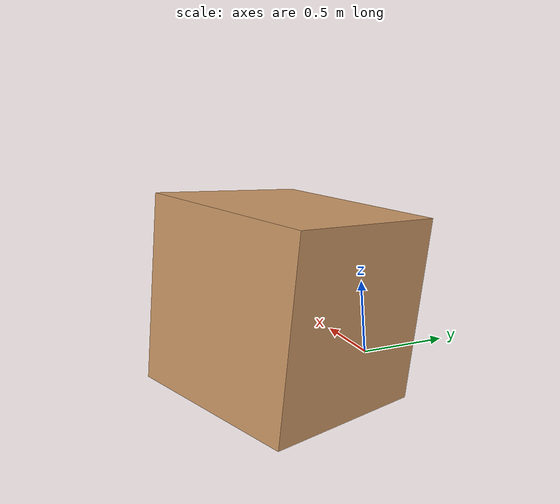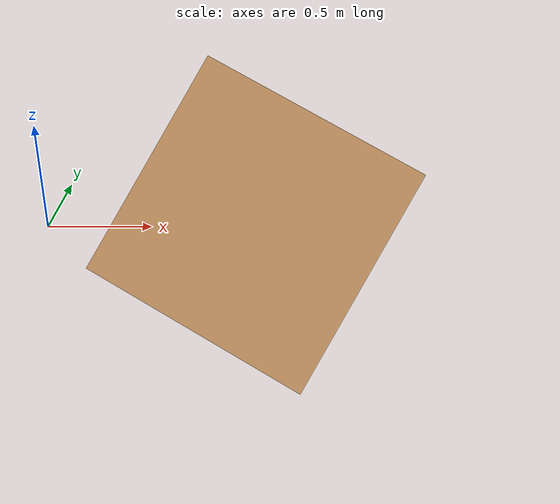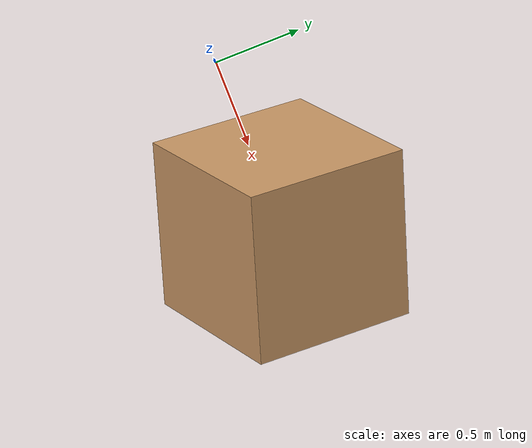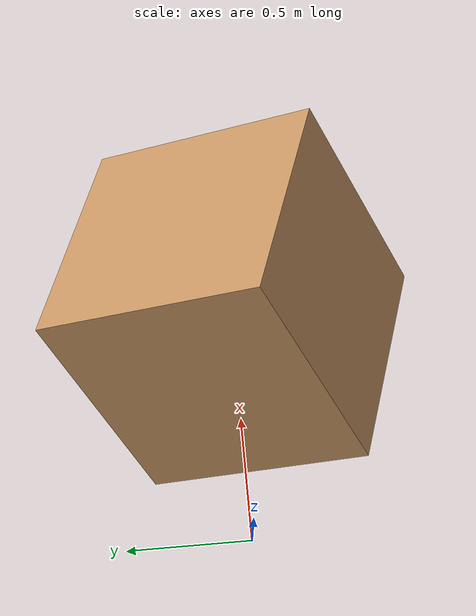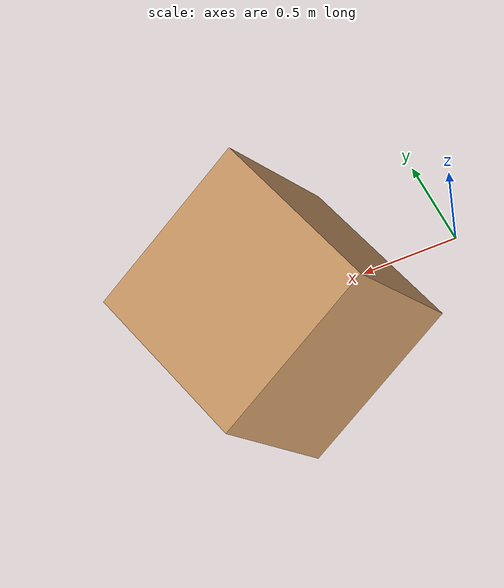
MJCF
<mujoco model="ant">
  <compiler angle="degree" coordinate="local" inertiafromgeom="true"/>
  <option timestep="0.01" iterations="4"/>

  <default>
    <joint armature="1" damping="1" limited="true"/>
    <geom contype="0" conaffinity="0" condim="3" density="5.0" friction="1 0.5 0.5" rgba="0.8 0.6 0.4 1"/>
  </default>
  <asset>
    <texture builtin="gradient" height="100" rgb1="1 1 1" rgb2="0 0 0" type="skybox" width="100"/>
    <texture builtin="flat" height="1278" mark="cross" markrgb="1 1 1" name="texgeom" random="0.01" rgb1="0.8 0.6 0.4" rgb2="0.8 0.6 0.4" type="cube" width="127"/>
    <texture builtin="checker" height="100" name="texplane" rgb1="0 0 0" rgb2="0.8 0.8 0.8" type="2d" width="100"/>
    <material name="MatPlane" reflectance="0.5" shininess="1" specular="1" texrepeat="60 60" texture="texplane"/>
    <material name="geom" texture="texgeom" texuniform="true"/>
    <mesh name="box" file="data/cube.obj"/>
  </asset>

  <worldbody>
    <light cutoff="100" diffuse="1 1 1" dir="-0 0 -1.3" directional="true" exponent="1" pos="0 0 2" specular=".1 .1 .1"/>

    <camera name="fixed" pos="0 -4 0" zaxis="0 -1 0" fovy="45"/>
    <!-- Pitch 30 Yaw 45 -->
    <body name="tet1" pos="1 0 0" quat="0.0923 0.2391 0.2391 0.9362">
      <geom name="tet1" contype="1" conaffinity="1" pos="0 0 0" type="mesh" mesh="box"/>
      <joint armature="0" damping="0" limited="false" margin="0.01" name="root1" pos="0 0 0" type="free"/>
    </body>

  </worldbody>
</mujoco>
